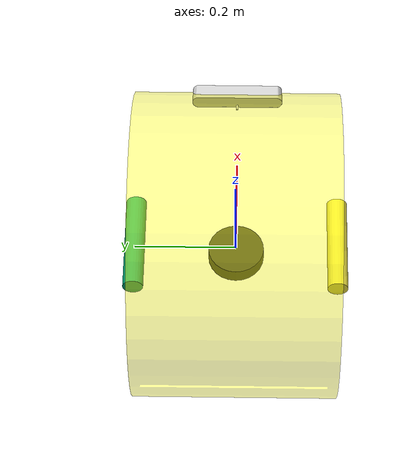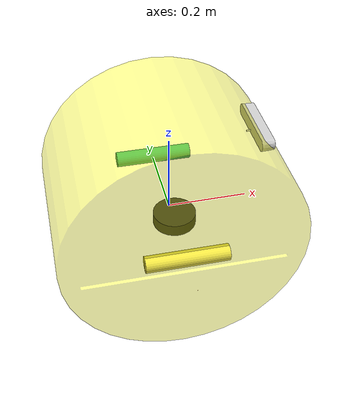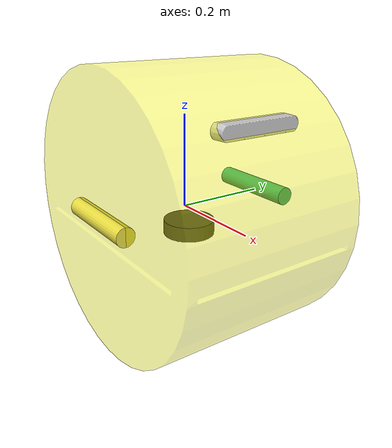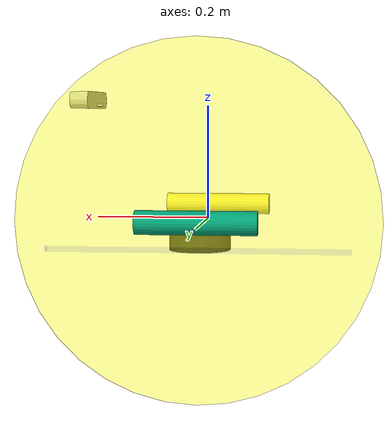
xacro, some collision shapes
<?xml version="1.0"?>
<robot name="panporter" xmlns:xacro="http://www.ros.org/wiki/xacro">
<xacro:arg name="my_namespace" default="panporter"/>

<!-- * * * link definitions * * * -->
  <link name="base_footprint"/>

  <joint name="base_joint" type="fixed">
    <pose>0 0 0.36 0 0 0</pose>
    <parent link="base_footprint"/>
    <child link="robot_cover" />
    <origin xyz="0 0 0.010" rpy="0 0 0"/>
  </joint>

  <link name="robot_cover">
    <pose>0 0 0.35 0 0 0</pose>
    <visual>
      <geometry>
        <mesh filename="package://panporter_pkg/meshes/robot_parts/robot_cover.stl" scale="1.0 1.0 1.0"/>
      </geometry>
      <origin rpy="0 0 0" xyz="0 0 0"/>
      <material name="yellow">
        <color rgba="1 1 0 0.4"/>
      </material>
    </visual>
    <collision>
      <origin rpy="0 0 0" xyz="0 0 0"/>
      <geometry>
        <mesh filename="package://panporter_pkg/meshes/robot_parts/robot_cover.stl" scale="1.0 1.0 1.0"/>
      </geometry>
      <material name="yellow">
        <color rgba="1 1 0 0.4"/>
      </material>
    </collision>
    <inertial>
	    <mass value="10.0"/>
  <!-- izz=skrecanie, iyy=obracanie_bebnem, ixx=pochylanie_na_boki -->
	    <inertia ixx="0.358333333" ixy="0.0" ixz="0.0" iyy="0.358333333" iyz="0.0" izz="0.450"/>
      <origin rpy="0 0 0" xyz="0 0 -0.1"/>
    </inertial>
  </link>

  <link name="prism_left_link">
    <pose>0 0 0.35 0 0 0</pose>
    <visual>
      <geometry>
	      <cylinder length="0.2" radius="0.02"/>
      </geometry>
      <origin rpy="0 -1.570796327 0" xyz="0 0 0"/>
    </visual>
    <collision>
      <geometry>
	      <cylinder length="0.2" radius="0.02"/>
      </geometry>
      <origin rpy="0 -1.570796327 0" xyz="0 0 0"/>
    </collision>
    <inertial>
	    <mass value="0.5"/>
	    <inertia ixx="0.001716667" ixy="0.0" ixz="0.0" iyy="0.001716667" iyz="0.0" izz="0.1"/>
    </inertial>
  </link>

  <link name="prism_right_link">
    <pose>0 0 0.35 0 0 0</pose>
    <visual>
      <geometry>
	      <cylinder length="0.2" radius="0.02"/>
      </geometry>
      <origin rpy="0 1.570796327 0" xyz="0 0 0"/>
    </visual>
    <collision>
      <geometry>
	      <cylinder length="0.2" radius="0.02"/>
      </geometry>
      <origin rpy="0 -1.570796327 0" xyz="0 0 0"/>
    </collision>
    <inertial>
	    <mass value="0.5"/>
	    <inertia ixx="0.001716667" ixy="0.0" ixz="0.0" iyy="0.001716667" iyz="0.0" izz="0.1"/>
    </inertial>
  </link>

  <joint name="prism_right_blue_joint" type="fixed">
    <parent link="prism_left_link"/>
    <child link="prism_right_link"/>
    <origin xyz="0 -0.4 0"/>
  </joint>

  <joint name="prism_joint" type="prismatic">
    <parent link="robot_cover"/>
    <child link="prism_left_link"/>
    <origin rpy="0 0 0" xyz="0 0.2 0"/>
    <axis xyz="-1 0 0" />
    <limit effort="3000" velocity="50.0" lower="-0.5" upper="0.5"/>
    <safety_controller k_position="20" k_velocity="20" soft_lower_limit="-0.45" soft_upper_limit="0.45"/>
    <dynamics damping="0.01" friction="0.1"/>
  </joint>

  <transmission name="prism_trans">
    <type>transmission_interface/SimpleTransmission</type>
    <joint name="prism_joint">
      <hardwareInterface>hardware_interface/EffortJointInterface</hardwareInterface>
    </joint>
    <actuator name="prism_motor">
      <mechanicalReduction>1</mechanicalReduction>
      <hardwareInterface>hardware_interface/EffortJointInterface</hardwareInterface>
    </actuator>
  </transmission>

  <link name="wheel_left_link">
    <pose>0 0 0.35 0 0 0</pose>
    <visual>
      <geometry>
        <mesh filename="package://panporter_pkg/meshes/robot_parts/wheel2.stl" scale="0.001 0.001 0.001"/>
      </geometry>
      <origin rpy="0 0 0" xyz="0 0 0"/>
    </visual>
    <collision>
      <origin rpy="0 0 0" xyz="0 0 0"/>
      <geometry>
        <mesh filename="package://panporter_pkg/meshes/robot_parts/wheel2.stl" scale="0.001 0.001 0.001"/>
      </geometry>
      <surface></surface>
    </collision>
    <inertial>
	    <mass value="1"/>
	    <inertia ixx="0.07945" ixy="0.0" ixz="0.01" iyy="0.1389" iyz="0.0" izz="0.07945"/>
    </inertial>
  </link>

  <joint name="wheel_left_joint" type="continuous">
    <parent link="prism_left_link"/>
    <child link="wheel_left_link"/>
    <origin rpy="0 0 0" xyz="0 0.1 0"/>
    <axis xyz="0 1 0" />
    <limit effort="500" velocity="1000"/>
    <dynamics damping="0.1" friction="0.1"/>
  </joint>

  <transmission name="wheel_left_trans">
    <type>transmission_interface/SimpleTransmission</type>
    <joint name="wheel_left_joint">
      <hardwareInterface>hardware_interface/EffortJointInterface</hardwareInterface>
    </joint>
    <actuator name="wheel_left_motor">
      <mechanicalReduction>10</mechanicalReduction>
      <hardwareInterface>hardware_interface/EffortJointInterface</hardwareInterface>
    </actuator>
  </transmission>

  <link name="wheel_right_link">
    <pose>0 0 0.35 0 0 0</pose>
    <visual>
      <geometry>
        <mesh filename="package://panporter_pkg/meshes/robot_parts/wheel2.stl" scale="0.001 0.001 0.001"/>
      </geometry>
      <origin rpy="0 0 0" xyz="0 0 0"/>
    </visual>
    <collision>
      <geometry>
        <mesh filename="package://panporter_pkg/meshes/robot_parts/wheel2.stl" scale="0.001 0.001 0.001"/>
      </geometry>
      <origin rpy="0 0 0" xyz="0 0 0"/>
    </collision>
    <inertial>
	    <mass value="1"/>
	    <inertia ixx="0.07945" ixy="0.0" ixz="0.01" iyy="0.1389" iyz="0.0" izz="0.07945"/>
    </inertial>
  </link>

  <joint name="wheel_right_joint" type="continuous">
    <parent link="prism_right_link"/>
    <child link="wheel_right_link"/>
    <origin rpy="0 0 0" xyz="0 -0.1 0"/>
    <axis xyz="0 1 0" />
    <limit effort="500" velocity="1000"/>
    <dynamics damping="0.01" friction="0.1"/>
  </joint>

  <transmission name="wheel_right_trans">
    <type>transmission_interface/SimpleTransmission</type>
    <joint name="wheel_right_joint">
      <hardwareInterface>hardware_interface/EffortJointInterface</hardwareInterface>
    </joint>
    <actuator name="wheel_right_motor">
      <mechanicalReduction>10</mechanicalReduction>
      <hardwareInterface>hardware_interface/EffortJointInterface</hardwareInterface>
    </actuator>
  </transmission>

  <joint name="imu_joint" type="fixed">
    <parent link="robot_cover"/>
    <child link="imu_link"/>
    <origin xyz="0.0 0 0.068" rpy="0 0 0"/>
  </joint>

  <link name="imu_link"/>

  <joint name="scan_joint" type="fixed">
    <parent link="robot_cover"/>
    <child link="base_scan"/>
    <origin xyz="0 0 -0.045" rpy="0 0 0"/>
  </joint>

  <link name="base_scan">
    <visual>
      <origin xyz="0 0 0" rpy="0 0 0"/>
      <geometry>
        <mesh filename="package://panporter_pkg/meshes/sensors/lds.stl" scale="0.001 0.001 0.001"/>
      </geometry>
      <material name="dark"/>
    </visual>
    <collision>
      <origin xyz="0.015 0 -0.0065" rpy="0 0 0"/>
      <geometry>
        <cylinder length="0.0315" radius="0.055"/>
      </geometry>
    </collision>
    <inertial>
      <mass value="0.114" />
      <origin xyz="0 0 0" />
      <inertia ixx="0.001" ixy="0.0" ixz="0.0"
               iyy="0.001" iyz="0.0"
               izz="0.001" />
    </inertial>
  </link>

  <joint name="camera_joint" type="fixed">
    <origin xyz="0.2 0 0.2" rpy="0 0 0"/>
    <parent link="robot_cover"/>
    <child link="camera_link"/>
  </joint>

  <link name="camera_link">
    <visual>
      <origin xyz="0 0 0" rpy="1.570796327 0 1.570796327"/>
      <geometry>
       <mesh filename="package://panporter_pkg/meshes/sensors/zed2.dae"/>
      </geometry>
    </visual>
    <collision>
      <origin xyz="0 0 0" rpy="0 0 1.570796327"/>
      <geometry>
        <box size="0.012 0.132 0.020"/>
      </geometry>
    </collision>
    <!-- This inertial field needs doesn't contain reliable data!! -->
  </link>

<!-- Gazebo cheet-sheet: http://sdformat.org/spec?ver=1.6&elem=physics  -->
  <gazebo>
    <plugin filename="libgazebo_ros_diff_drive.so" name="differential_drive_controller">
      <alwaysOn>true</alwaysOn>
      <updateRate>100</updateRate>
      <leftJoint>wheel_left_joint</leftJoint>
      <rightJoint>wheel_right_joint</rightJoint>
      <torque>5</torque>
      <wheelSeparation>0.4</wheelSeparation>
      <wheelDiameter>0.7</wheelDiameter>
      <commandTopic>cmd_vel</commandTopic>
      <odometryTopic>odom</odometryTopic>
      <odometryFrame>odom</odometryFrame>
      <odometrySource>world</odometrySource>
      <robotBaseFrame>base_footprint</robotBaseFrame>
      <publishTf>true</publishTf>
      <publishOdomTF>true</publishOdomTF>
      <publishWheelTF>true</publishWheelTF>
      <publishWheelJointState>true</publishWheelJointState>
      <wheelAcceleration>0</wheelAcceleration>
      <wheelTorque>5</wheelTorque>
      <rosDebugLevel>na</rosDebugLevel>
      <legacyMode>true</legacyMode>
    </plugin>
  </gazebo>

  <gazebo>
    <plugin name="gazebo_ros_control" filename="libgazebo_ros_control.so">
      <robotNamespace>/$(arg my_namespace)</robotNamespace>
      <robotSimType>gazebo_ros_control/DefaultRobotHWSim</robotSimType>
      <controlPeriod>0.001</controlPeriod>
      <legacyModeNS>false</legacyModeNS>
    </plugin>
    <plugin name='gazebo_ros_imu' filename='libhector_gazebo_ros_imu.so'>
      <robotNamespace>/$(arg my_namespace)</robotNamespace>
      <alwaysOn>true</alwaysOn>
      <updateRate>200.0</updateRate>
      <bodyName>robot_cover</bodyName>
      <topicName>/imu_bosch/data_raw</topicName>
      <gaussianNoise>0.02</gaussianNoise>
      <xyzOffsets>0 0 0</xyzOffsets>
      <rpyOffsets>0 0 0</rpyOffsets>
    </plugin>
  </gazebo>

  <!-- robot_cover -->
	<gazebo reference="robot_cover">
		<material value="Gazebo/Yellow"/>
    <mu1>100.0</mu1>
    <mu2>100.0</mu2>
	</gazebo>

  <!-- prism_left_link -->
	<gazebo reference="prism_left_link">
		<material value="Gazebo/Blue"/>
	</gazebo>

  <!-- prism_right_link -->
	<gazebo reference="prism_right_link">
		<material value="Gazebo/Blue"/>
	</gazebo>

  <!-- wheel_left_link -->
	<gazebo reference="wheel_left_link">
		<material value="Gazebo/Red"/>
    <mu1>0.7</mu1>
    <mu2>0.7</mu2>
    <minDepth>0.001</minDepth>
    <kp>40000000.0</kp>
    <kd>0.5</kd>
	</gazebo>

  <!-- wheel_right_link -->
	<gazebo reference="wheel_right_link">
		<material value="Gazebo/Green"/>
    <mu1>0.7</mu1>
    <mu2>0.7</mu2>
    <minDepth>0.005</minDepth>
    <kp>40000000.0</kp>
    <kd>0.5</kd>
	</gazebo>

  <gazebo>
    <plugin name="imu_plugin" filename="libgazebo_ros_imu.so">
      <robotNamespace>/$(arg my_namespace)</robotNamespace>
      <alwaysOn>true</alwaysOn>
      <bodyName>imu_link</bodyName>
      <frameName>imu_link</frameName>
      <topicName>imu</topicName>
      <serviceName>imu_service</serviceName>
      <gaussianNoise>0.0</gaussianNoise>
      <updateRate>0</updateRate>
      <imu>
        <noise>
          <type>gaussian</type>
          <rate>
            <mean>0.0</mean>
            <stddev>2e-4</stddev>
            <bias_mean>0.0000075</bias_mean>
            <bias_stddev>0.0000008</bias_stddev>
          </rate>
          <accel>
            <mean>0.0</mean>
            <stddev>1.7e-2</stddev>
            <bias_mean>0.1</bias_mean>
            <bias_stddev>0.001</bias_stddev>
          </accel>
        </noise>
      </imu>
    </plugin>
  </gazebo>

  <gazebo reference="base_scan">
    <material>Gazebo/FlatBlack</material>
    <sensor type="ray" name="lds_lfcd_sensor">
      <pose>0 0 0 0 0 0</pose>
      <visualize>true</visualize>
      <update_rate>5</update_rate>
      <ray>
        <scan>
          <horizontal>
            <samples>360</samples>
            <resolution>1</resolution>
            <min_angle>0.0</min_angle>
            <max_angle>6.28319</max_angle>
          </horizontal>
        </scan>
        <range>
          <min>0.120</min>
          <max>3.5</max>
          <resolution>0.015</resolution>
        </range>
        <noise>
          <type>gaussian</type>
          <mean>0.0</mean>
          <stddev>0.01</stddev>
        </noise>
      </ray>
      <plugin name="gazebo_ros_lds_lfcd_controller" filename="libgazebo_ros_laser.so">
        <topicName>scan</topicName>
        <frameName>base_scan</frameName>
      </plugin>
    </sensor>
  </gazebo>

  <!--link : https://www.raspberrypi.org/documentation/hardware/camera/-->
  <gazebo reference="camera_link">
    <sensor type="depth" name="camera">
      <visualize>true</visualize>
      <always_on>true</always_on>
      <update_rate>20.0</update_rate>
      <camera>
        <horizontal_fov>${60.0*2*1.570796327/180.0}</horizontal_fov>
        <image>
          <format>B8G8R8</format>
          <width>640</width>
          <height>480</height>
        </image>
        <clip>
          <near>0.05</near>
          <far>8.0</far>
        </clip>
      </camera>
      <plugin name="camera_plugin" filename="libgazebo_ros_openni_kinect.so">
        <robotNamespace>/$(arg my_namespace)</robotNamespace>
        <baseline>0.1</baseline>
        <alwaysOn>true</alwaysOn>
        <updateRate>10</updateRate>
        <cameraName>camera</cameraName>
        <imageTopicName>rgb/image_raw</imageTopicName>
        <depthImageTopicName>depth/image_raw</depthImageTopicName>
        <cameraInfoTopicName>rgb/camera_info</cameraInfoTopicName>
        <depthImageCameraInfoTopicName>depth/camera_info</depthImageCameraInfoTopicName>
        <pointCloudTopicName>depth/points</pointCloudTopicName>
        <frameName>robot_cover</frameName>
        <pointCloudCutoff>0.5</pointCloudCutoff>
        <pointCloudCutoffMax>3.0</pointCloudCutoffMax>
        <distortion_k1>0.0</distortion_k1>
        <distortion_k2>0.0</distortion_k2>
        <distortion_k3>0.0</distortion_k3>
        <distortion_t1>0.0</distortion_t1>
        <distortion_t2>0.0</distortion_t2>
        <CxPrime>0</CxPrime>
        <Cx>0</Cx>
        <Cy>0</Cy>
        <focalLength>0</focalLength>
        <hackBaseline>0</hackBaseline>
      </plugin>
    </sensor>
  </gazebo>

</robot>
